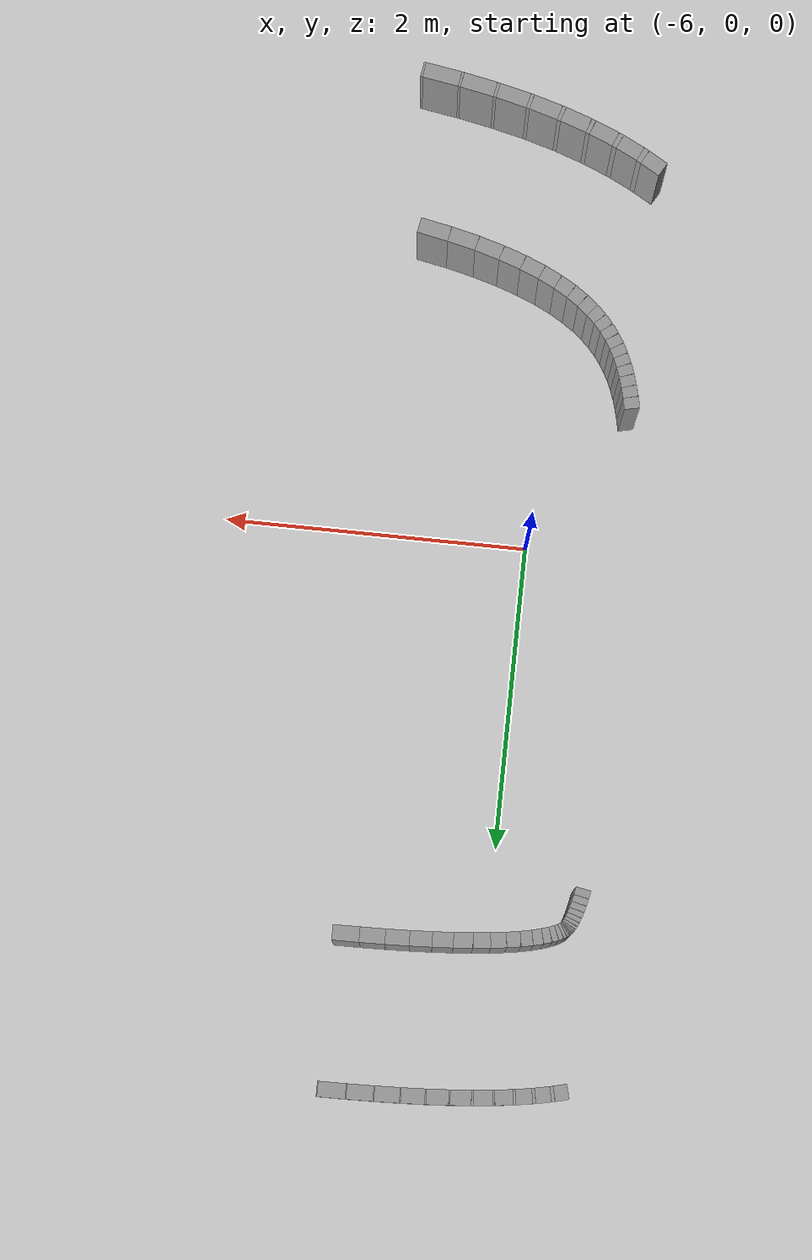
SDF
<sdf version="1.6">
 <world name="default">
  <include><uri>model://ground_plane</uri></include>
  <include><uri>model://sun</uri></include>
  <model name="wall_22_outward">
   <static>true</static>
   <link name="link">
    <collision name="collision">
     <geometry><box><size>0.1745138847776721 0.1 1.0</size></box></geometry>
    </collision>
    <visual name="visual">
     <geometry><box><size>0.1745138847776721 0.1 1.0</size></box></geometry>
     <material>
      <script><uri>file://media/materials/scripts/gazebo.material</uri><name>Gazebo/Gray</name></script>
     </material>
    </visual>
   </link>
   <pose>-5.089136544184888 2.688651385560158 0.5 0 0 -3.1303867783887305</pose>
  </model>
  <model name="wall_23_outward">
   <static>true</static>
   <link name="link">
    <collision name="collision">
     <geometry><box><size>0.16537689547402926 0.1 1.0</size></box></geometry>
    </collision>
    <visual name="visual">
     <geometry><box><size>0.16537689547402926 0.1 1.0</size></box></geometry>
     <material>
      <script><uri>file://media/materials/scripts/gazebo.material</uri><name>Gazebo/Gray</name></script>
     </material>
    </visual>
   </link>
   <pose>-5.259055711600917 2.685821537756546 0.5 0 0 -3.119192514208508</pose>
  </model>
  <model name="wall_24_outward">
   <static>true</static>
   <link name="link">
    <collision name="collision">
     <geometry><box><size>0.15579286756665978 0.1 1.0</size></box></geometry>
    </collision>
    <visual name="visual">
     <geometry><box><size>0.15579286756665978 0.1 1.0</size></box></geometry>
     <material>
      <script><uri>file://media/materials/scripts/gazebo.material</uri><name>Gazebo/Gray</name></script>
     </material>
    </visual>
   </link>
   <pose>-5.419572740003172 2.6812607695263315 0.5 0 0 -3.106812671907408</pose>
  </model>
  <model name="wall_25_outward">
   <static>true</static>
   <link name="link">
    <collision name="collision">
     <geometry><box><size>0.14576239276482258 0.1 1.0</size></box></geometry>
    </collision>
    <visual name="visual">
     <geometry><box><size>0.14576239276482258 0.1 1.0</size></box></geometry>
     <material>
      <script><uri>file://media/materials/scripts/gazebo.material</uri><name>Gazebo/Gray</name></script>
     </material>
    </visual>
   </link>
   <pose>-5.570216822638956 2.6750035530914955 0.5 0 0 -3.0928842104872367</pose>
  </model>
  <model name="wall_26_outward">
   <static>true</static>
   <link name="link">
    <collision name="collision">
     <geometry><box><size>0.13529707555168738 0.1 1.0</size></box></geometry>
    </collision>
    <visual name="visual">
     <geometry><box><size>0.13529707555168738 0.1 1.0</size></box></geometry>
     <material>
      <script><uri>file://media/materials/scripts/gazebo.material</uri><name>Gazebo/Gray</name></script>
     </material>
    </visual>
   </link>
   <pose>-5.71051875122332 2.6670839238849906 0.5 0 0 -3.0769327121487433</pose>
  </model>
  <model name="wall_27_outward">
   <static>true</static>
   <link name="link">
    <collision name="collision">
     <geometry><box><size>0.12440593182755699 0.1 1.0</size></box></geometry>
    </collision>
    <visual name="visual">
     <geometry><box><size>0.12440593182755699 0.1 1.0</size></box></geometry>
     <material>
      <script><uri>file://media/materials/scripts/gazebo.material</uri><name>Gazebo/Gray</name></script>
     </material>
    </visual>
   </link>
   <pose>-5.840013486167057 2.657540696402026 0.5 0 0 -3.0583473821088925</pose>
  </model>
  <model name="wall_28_outward">
   <static>true</static>
   <link name="link">
    <collision name="collision">
     <geometry><box><size>0.11310574560206636 0.1 1.0</size></box></geometry>
    </collision>
    <visual name="visual">
     <geometry><box><size>0.11310574560206636 0.1 1.0</size></box></geometry>
     <material>
      <script><uri>file://media/materials/scripts/gazebo.material</uri><name>Gazebo/Gray</name></script>
     </material>
    </visual>
   </link>
   <pose>-5.958241194113793 2.6464294106881496 0.5 0 0 -3.0363790206103327</pose>
  </model>
  <model name="wall_29_outward">
   <static>true</static>
   <link name="link">
    <collision name="collision">
     <geometry><box><size>0.1014162737693384 0.1 1.0</size></box></geometry>
    </collision>
    <visual name="visual">
     <geometry><box><size>0.1014162737693384 0.1 1.0</size></box></geometry>
     <material>
      <script><uri>file://media/materials/scripts/gazebo.material</uri><name>Gazebo/Gray</name></script>
     </material>
    </visual>
   </link>
   <pose>-6.064751796304438 2.6338422294535917 0.5 0 0 -3.010110535834303</pose>
  </model>
  <model name="wall_30_outward">
   <static>true</static>
   <link name="link">
    <collision name="collision">
     <geometry><box><size>0.0893771961264983 0.1 1.0</size></box></geometry>
    </collision>
    <visual name="visual">
     <geometry><box><size>0.0893771961264983 0.1 1.0</size></box></geometry>
     <material>
      <script><uri>file://media/materials/scripts/gazebo.material</uri><name>Gazebo/Gray</name></script>
     </material>
    </visual>
   </link>
   <pose>-6.159117503773086 2.619936124576597 0.5 0 0 -2.9784553037772485</pose>
  </model>
  <model name="wall_31_outward">
   <static>true</static>
   <link name="link">
    <collision name="collision">
     <geometry><box><size>0.07706047219806364 0.1 1.0</size></box></geometry>
    </collision>
    <visual name="visual">
     <geometry><box><size>0.07706047219806364 0.1 1.0</size></box></geometry>
     <material>
      <script><uri>file://media/materials/scripts/gazebo.material</uri><name>Gazebo/Gray</name></script>
     </material>
    </visual>
   </link>
   <pose>-6.240964236394742 2.6049706022092662 0.5 0 0 -2.9401979096768147</pose>
  </model>
  <model name="wall_32_outward">
   <static>true</static>
   <link name="link">
    <collision name="collision">
     <geometry><box><size>0.06459485305786183 0.1 1.0</size></box></geometry>
    </collision>
    <visual name="visual">
     <geometry><box><size>0.06459485305786183 0.1 1.0</size></box></geometry>
     <material>
      <script><uri>file://media/materials/scripts/gazebo.material</uri><name>Gazebo/Gray</name></script>
     </material>
    </visual>
   </link>
   <pose>-6.310028393585592 2.5893486071235454 0.5 0 0 -2.8940190460786783</pose>
  </model>
  <model name="wall_33_outward">
   <static>true</static>
   <link name="link">
    <collision name="collision">
     <geometry><box><size>0.05219800385316098 0.1 1.0</size></box></geometry>
    </collision>
    <visual name="visual">
     <geometry><box><size>0.05219800385316098 0.1 1.0</size></box></geometry>
     <material>
      <script><uri>file://media/materials/scripts/gazebo.material</uri><name>Gazebo/Gray</name></script>
     </material>
    </visual>
   </link>
   <pose>-6.366251846193697 2.57364874288543 0.5 0 0 -2.8386826201260953</pose>
  </model>
  <model name="wall_34_outward">
   <static>true</static>
   <link name="link">
    <collision name="collision">
     <geometry><box><size>0.04021269407964118 0.1 1.0</size></box></geometry>
    </collision>
    <visual name="visual">
     <geometry><box><size>0.04021269407964118 0.1 1.0</size></box></geometry>
     <material>
      <script><uri>file://media/materials/scripts/gazebo.material</uri><name>Gazebo/Gray</name></script>
     </material>
    </visual>
   </link>
   <pose>-6.4099196178435935 2.558621861044299 0.5 0 0 -2.7731493434163204</pose>
  </model>
  <model name="wall_35_outward">
   <static>true</static>
   <link name="link">
    <collision name="collision">
     <geometry><box><size>0.02916570258736988 0.1 1.0</size></box></geometry>
    </collision>
    <visual name="visual">
     <geometry><box><size>0.02916570258736988 0.1 1.0</size></box></geometry>
     <material>
      <script><uri>file://media/materials/scripts/gazebo.material</uri><name>Gazebo/Gray</name></script>
     </material>
    </visual>
   </link>
   <pose>-6.441842121010467 2.5451090108809797 0.5 0 0 -2.6970505991704186</pose>
  </model>
  <model name="wall_36_outward">
   <static>true</static>
   <link name="link">
    <collision name="collision">
     <geometry><box><size>0.01970447937732626 0.1 1.0</size></box></geometry>
    </collision>
    <visual name="visual">
     <geometry><box><size>0.01970447937732626 0.1 1.0</size></box></geometry>
     <material>
      <script><uri>file://media/materials/scripts/gazebo.material</uri><name>Gazebo/Gray</name></script>
     </material>
    </visual>
   </link>
   <pose>-6.4635048994722215 2.5338514486330386 0.5 0 0 -2.6109276550862126</pose>
  </model>
  <model name="wall_37_outward">
   <static>true</static>
   <link name="link">
    <collision name="collision">
     <geometry><box><size>0.012542738685571155 0.1 1.0</size></box></geometry>
    </collision>
    <visual name="visual">
     <geometry><box><size>0.012542738685571155 0.1 1.0</size></box></geometry>
     <material>
      <script><uri>file://media/materials/scripts/gazebo.material</uri><name>Gazebo/Gray</name></script>
     </material>
    </visual>
   </link>
   <pose>-6.477088068018396 2.525195871121216 0.5 0 0 -2.516606615605364</pose>
  </model>
  <model name="wall_38_outward">
   <static>true</static>
   <link name="link">
    <collision name="collision">
     <geometry><box><size>0.008268420198442037 0.1 1.0</size></box></geometry>
    </collision>
    <visual name="visual">
     <geometry><box><size>0.008268420198442037 0.1 1.0</size></box></geometry>
     <material>
      <script><uri>file://media/materials/scripts/gazebo.material</uri><name>Gazebo/Gray</name></script>
     </material>
    </visual>
   </link>
   <pose>-6.485270146383673 2.518786986967492 0.5 0 0 -2.417221727164259</pose>
  </model>
  <model name="wall_39_outward">
   <static>true</static>
   <link name="link">
    <collision name="collision">
     <geometry><box><size>0.007109251496982159 0.1 1.0</size></box></geometry>
    </collision>
    <visual name="visual">
     <geometry><box><size>0.007109251496982159 0.1 1.0</size></box></geometry>
     <material>
      <script><uri>file://media/materials/scripts/gazebo.material</uri><name>Gazebo/Gray</name></script>
     </material>
    </visual>
   </link>
   <pose>-6.490779170693379 2.513437117754802 0.5 0 0 -2.3169107187363056</pose>
  </model>
  <model name="wall_40_outward">
   <static>true</static>
   <link name="link">
    <collision name="collision">
     <geometry><box><size>0.0088053573459172 0.1 1.0</size></box></geometry>
    </collision>
    <visual name="visual">
     <geometry><box><size>0.0088053573459172 0.1 1.0</size></box></geometry>
     <material>
      <script><uri>file://media/materials/scripts/gazebo.material</uri><name>Gazebo/Gray</name></script>
     </material>
    </visual>
   </link>
   <pose>-6.4958532651454215 2.5073195162132977 0.5 0 0 -2.2198855603320045</pose>
  </model>
  <model name="wall_41_outward">
   <static>true</static>
   <link name="link">
    <collision name="collision">
     <geometry><box><size>0.012729278913564302 0.1 1.0</size></box></geometry>
    </collision>
    <visual name="visual">
     <geometry><box><size>0.012729278913564302 0.1 1.0</size></box></geometry>
     <material>
      <script><uri>file://media/materials/scripts/gazebo.material</uri><name>Gazebo/Gray</name></script>
     </material>
    </visual>
   </link>
   <pose>-6.501889186138682 2.498415874615053 0.5 0 0 -2.1296589106911497</pose>
  </model>
  <model name="wall_42_outward">
   <static>true</static>
   <link name="link">
    <collision name="collision">
     <geometry><box><size>0.018078094400813375 0.1 1.0</size></box></geometry>
    </collision>
    <visual name="visual">
     <geometry><box><size>0.018078094400813375 0.1 1.0</size></box></geometry>
     <material>
      <script><uri>file://media/materials/scripts/gazebo.material</uri><name>Gazebo/Gray</name></script>
     </material>
    </visual>
   </link>
   <pose>-6.509419431233865 2.484992380916353 0.5 0 0 -2.048493816246914</pose>
  </model>
  <model name="wall_43_outward">
   <static>true</static>
   <link name="link">
    <collision name="collision">
     <geometry><box><size>0.024121877454705724 0.1 1.0</size></box></geometry>
    </collision>
    <visual name="visual">
     <geometry><box><size>0.024121877454705724 0.1 1.0</size></box></geometry>
     <material>
      <script><uri>file://media/materials/scripts/gazebo.material</uri><name>Gazebo/Gray</name></script>
     </material>
    </visual>
   </link>
   <pose>-6.518344016150102 2.4658871719110413 0.5 0 0 -1.977310241986031</pose>
  </model>
  <model name="wall_44_outward">
   <static>true</static>
   <link name="link">
    <collision name="collision">
     <geometry><box><size>0.030317028157117235 0.1 1.0</size></box></geometry>
    </collision>
    <visual name="visual">
     <geometry><box><size>0.030317028157117235 0.1 1.0</size></box></geometry>
     <material>
      <script><uri>file://media/materials/scripts/gazebo.material</uri><name>Gazebo/Gray</name></script>
     </material>
    </visual>
   </link>
   <pose>-6.528243036378707 2.44054507561391 0.5 0 0 -1.916038067245079</pose>
  </model>
  <model name="wall_45_outward">
   <static>true</static>
   <link name="link">
    <collision name="collision">
     <geometry><box><size>0.03633877895909691 0.1 1.0</size></box></geometry>
    </collision>
    <visual name="visual">
     <geometry><box><size>0.03633877895909691 0.1 1.0</size></box></geometry>
     <material>
      <script><uri>file://media/materials/scripts/gazebo.material</uri><name>Gazebo/Gray</name></script>
     </material>
    </visual>
   </link>
   <pose>-6.538622990509031 2.408886620681297 0.5 0 0 -1.8639205412335749</pose>
  </model>
  <model name="wall_46_outward">
   <static>true</static>
   <link name="link">
    <collision name="collision">
     <geometry><box><size>0.042021028365479135 0.1 1.0</size></box></geometry>
    </collision>
    <visual name="visual">
     <geometry><box><size>0.042021028365479135 0.1 1.0</size></box></geometry>
     <material>
      <script><uri>file://media/materials/scripts/gazebo.material</uri><name>Gazebo/Gray</name></script>
     </material>
    </visual>
   </link>
   <pose>-6.549054362132731 2.3711306367562526 0.5 0 0 -1.8199780611749543</pose>
  </model>
  <model name="wall_47_outward">
   <static>true</static>
   <link name="link">
    <collision name="collision">
     <geometry><box><size>0.04727209908733998 0.1 1.0</size></box></geometry>
    </collision>
    <visual name="visual">
     <geometry><box><size>0.04727209908733998 0.1 1.0</size></box></geometry>
     <material>
      <script><uri>file://media/materials/scripts/gazebo.material</uri><name>Gazebo/Gray</name></script>
     </material>
    </visual>
   </link>
   <pose>-6.559215694631106 2.3276635586757406 0.5 0 0 -1.783078301091299</pose>
  </model>
  <model name="wall_48_outward">
   <static>true</static>
   <link name="link">
    <collision name="collision">
     <geometry><box><size>0.052111580436070885 0.1 1.0</size></box></geometry>
    </collision>
    <visual name="visual">
     <geometry><box><size>0.052111580436070885 0.1 1.0</size></box></geometry>
     <material>
      <script><uri>file://media/materials/scripts/gazebo.material</uri><name>Gazebo/Gray</name></script>
     </material>
    </visual>
   </link>
   <pose>-6.568893499312052 2.2789293031315054 0.5 0 0 -1.7520892562855555</pose>
  </model>
  <model name="wall_86_outward">
   <static>true</static>
   <link name="link">
    <collision name="collision">
     <geometry><box><size>0.07518534213825824 0.1 1.0</size></box></geometry>
    </collision>
    <visual name="visual">
     <geometry><box><size>0.07518534213825824 0.1 1.0</size></box></geometry>
     <material>
      <script><uri>file://media/materials/scripts/gazebo.material</uri><name>Gazebo/Gray</name></script>
     </material>
    </visual>
   </link>
   <pose>-6.575822420470814 -0.9015789267510637 0.5 0 0 -1.3607689364903768</pose>
  </model>
  <model name="wall_87_outward">
   <static>true</static>
   <link name="link">
    <collision name="collision">
     <geometry><box><size>0.07320153283139844 0.1 1.0</size></box></geometry>
    </collision>
    <visual name="visual">
     <geometry><box><size>0.07320153283139844 0.1 1.0</size></box></geometry>
     <material>
      <script><uri>file://media/materials/scripts/gazebo.material</uri><name>Gazebo/Gray</name></script>
     </material>
    </visual>
   </link>
   <pose>-6.5588357145371265 -0.9737843192031871 0.5 0 0 -1.3181459025360924</pose>
  </model>
  <model name="wall_88_outward">
   <static>true</static>
   <link name="link">
    <collision name="collision">
     <geometry><box><size>0.07114072034224858 0.1 1.0</size></box></geometry>
    </collision>
    <visual name="visual">
     <geometry><box><size>0.07114072034224858 0.1 1.0</size></box></geometry>
     <material>
      <script><uri>file://media/materials/scripts/gazebo.material</uri><name>Gazebo/Gray</name></script>
     </material>
    </visual>
   </link>
   <pose>-6.539121154249054 -1.0431881476569411 0.5 0 0 -1.2692166866374879</pose>
  </model>
  <model name="wall_89_outward">
   <static>true</static>
   <link name="link">
    <collision name="collision">
     <geometry><box><size>0.06919142123643665 0.1 1.0</size></box></geometry>
    </collision>
    <visual name="visual">
     <geometry><box><size>0.06919142123643665 0.1 1.0</size></box></geometry>
     <material>
      <script><uri>file://media/materials/scripts/gazebo.material</uri><name>Gazebo/Gray</name></script>
     </material>
    </visual>
   </link>
   <pose>-6.516460964256153 -1.1095658133714832 0.5 0 0 -1.213648997851773</pose>
  </model>
  <model name="wall_90_outward">
   <static>true</static>
   <link name="link">
    <collision name="collision">
     <geometry><box><size>0.06761527598463407 0.1 1.0</size></box></geometry>
    </collision>
    <visual name="visual">
     <geometry><box><size>0.06761527598463407 0.1 1.0</size></box></geometry>
     <material>
      <script><uri>file://media/materials/scripts/gazebo.material</uri><name>Gazebo/Gray</name></script>
     </material>
    </visual>
   </link>
   <pose>-6.490598193803983 -1.1728556132185068 0.5 0 0 -1.151360292855766</pose>
  </model>
  <model name="wall_91_outward">
   <static>true</static>
   <link name="link">
    <collision name="collision">
     <geometry><box><size>0.06673826582033647 0.1 1.0</size></box></geometry>
    </collision>
    <visual name="visual">
     <geometry><box><size>0.06673826582033647 0.1 1.0</size></box></geometry>
     <material>
      <script><uri>file://media/materials/scripts/gazebo.material</uri><name>Gazebo/Gray</name></script>
     </material>
    </visual>
   </link>
   <pose>-6.4611790343304625 -1.2332037732575896 0.5 0 0 -1.0826031948928696</pose>
  </model>
  <model name="wall_92_outward">
   <static>true</static>
   <link name="link">
    <collision name="collision">
     <geometry><box><size>0.06693331207335154 0.1 1.0</size></box></geometry>
    </collision>
    <visual name="visual">
     <geometry><box><size>0.06693331207335154 0.1 1.0</size></box></geometry>
     <material>
      <script><uri>file://media/materials/scripts/gazebo.material</uri><name>Gazebo/Gray</name></script>
     </material>
    </visual>
   </link>
   <pose>-6.427672778025029 -1.2909804781485636 0.5 0 0 -1.0080403564376326</pose>
  </model>
  <model name="wall_93_outward">
   <static>true</static>
   <link name="link">
    <collision name="collision">
     <geometry><box><size>0.06858158933500379 0.1 1.0</size></box></geometry>
    </collision>
    <visual name="visual">
     <geometry><box><size>0.06858158933500379 0.1 1.0</size></box></geometry>
     <material>
      <script><uri>file://media/materials/scripts/gazebo.material</uri><name>Gazebo/Gray</name></script>
     </material>
    </visual>
   </link>
   <pose>-6.389283598581196 -1.3467490626238656 0.5 0 0 -0.928767122730248</pose>
  </model>
  <model name="wall_94_outward">
   <static>true</static>
   <link name="link">
    <collision name="collision">
     <geometry><box><size>0.07203968442664313 0.1 1.0</size></box></geometry>
    </collision>
    <visual name="visual">
     <geometry><box><size>0.07203968442664313 0.1 1.0</size></box></geometry>
     <material>
      <script><uri>file://media/materials/scripts/gazebo.material</uri><name>Gazebo/Gray</name></script>
     </material>
    </visual>
   </link>
   <pose>-6.344876790815532 -1.4011845629545454 0.5 0 0 -0.8462896217126984</pose>
  </model>
  <model name="wall_95_outward">
   <static>true</static>
   <link name="link">
    <collision name="collision">
     <geometry><box><size>0.07757597076624428 0.1 1.0</size></box></geometry>
    </collision>
    <visual name="visual">
     <geometry><box><size>0.07757597076624428 0.1 1.0</size></box></geometry>
     <material>
      <script><uri>file://media/materials/scripts/gazebo.material</uri><name>Gazebo/Gray</name></script>
     </material>
    </visual>
   </link>
   <pose>-6.292954586463381 -1.4549477480855428 0.5 0 0 -0.7624463716337303</pose>
  </model>
  <model name="wall_96_outward">
   <static>true</static>
   <link name="link">
    <collision name="collision">
     <geometry><box><size>0.08532649711289683 0.1 1.0</size></box></geometry>
    </collision>
    <visual name="visual">
     <geometry><box><size>0.08532649711289683 0.1 1.0</size></box></geometry>
     <material>
      <script><uri>file://media/materials/scripts/gazebo.material</uri><name>Gazebo/Gray</name></script>
     </material>
    </visual>
   </link>
   <pose>-6.231709650742372 -1.5085378379438021 0.5 0 0 -0.6791912611696956</pose>
  </model>
  <model name="wall_97_outward">
   <static>true</static>
   <link name="link">
    <collision name="collision">
     <geometry><box><size>0.0952984141335097 0.1 1.0</size></box></geometry>
    </collision>
    <visual name="visual">
     <geometry><box><size>0.0952984141335097 0.1 1.0</size></box></geometry>
     <material>
      <script><uri>file://media/materials/scripts/gazebo.material</uri><name>Gazebo/Gray</name></script>
     </material>
    </visual>
   </link>
   <pose>-6.15914495853417 -1.5621796839339233 0.5 0 0 -0.5984132444574249</pose>
  </model>
  <model name="wall_98_outward">
   <static>true</static>
   <link name="link">
    <collision name="collision">
     <geometry><box><size>0.10736680912191676 0.1 1.0</size></box></geometry>
    </collision>
    <visual name="visual">
     <geometry><box><size>0.10736680912191676 0.1 1.0</size></box></geometry>
     <material>
      <script><uri>file://media/materials/scripts/gazebo.material</uri><name>Gazebo/Gray</name></script>
     </material>
    </visual>
   </link>
   <pose>-6.073235434523615 -1.615778488534839 0.5 0 0 -0.5217665300394687</pose>
  </model>
  <model name="wall_99_outward">
   <static>true</static>
   <link name="link">
    <collision name="collision">
     <geometry><box><size>0.12129840647334751 0.1 1.0</size></box></geometry>
    </collision>
    <visual name="visual">
     <geometry><box><size>0.12129840647334751 0.1 1.0</size></box></geometry>
     <material>
      <script><uri>file://media/materials/scripts/gazebo.material</uri><name>Gazebo/Gray</name></script>
     </material>
    </visual>
   </link>
   <pose>-5.972097645047224 -1.6689440407074936 0.5 0 0 -0.45052679043272414</pose>
  </model>
  <model name="wall_100_outward">
   <static>true</static>
   <link name="link">
    <collision name="collision">
     <geometry><box><size>0.1367852743493145 0.1 1.0</size></box></geometry>
    </collision>
    <visual name="visual">
     <geometry><box><size>0.1367852743493145 0.1 1.0</size></box></geometry>
     <material>
      <script><uri>file://media/materials/scripts/gazebo.material</uri><name>Gazebo/Gray</name></script>
     </material>
    </visual>
   </link>
   <pose>-5.854128028085939 -1.7210732852494899 0.5 0 0 -0.38554728693386464</pose>
  </model>
  <model name="wall_101_outward">
   <static>true</static>
   <link name="link">
    <collision name="collision">
     <geometry><box><size>0.15348123411152953 0.1 1.0</size></box></geometry>
    </collision>
    <visual name="visual">
     <geometry><box><size>0.15348123411152953 0.1 1.0</size></box></geometry>
     <material>
      <script><uri>file://media/materials/scripts/gazebo.material</uri><name>Gazebo/Gray</name></script>
     </material>
    </visual>
   </link>
   <pose>-5.71808826188563 -1.7714619702120444 0.5 0 0 -0.3272637623252619</pose>
  </model>
  <model name="wall_102_outward">
   <static>true</static>
   <link name="link">
    <collision name="collision">
     <geometry><box><size>0.17101043017087691 0.1 1.0</size></box></geometry>
    </collision>
    <visual name="visual">
     <geometry><box><size>0.17101043017087691 0.1 1.0</size></box></geometry>
     <material>
      <script><uri>file://media/materials/scripts/gazebo.material</uri><name>Gazebo/Gray</name></script>
     </material>
    </visual>
   </link>
   <pose>-5.563146124544544 -1.8194124467511958 0.5 0 0 -0.2757690331140755</pose>
  </model>
  <model name="wall_103_outward">
   <static>true</static>
   <link name="link">
    <collision name="collision">
     <geometry><box><size>0.18899383843622286 0.1 1.0</size></box></geometry>
    </collision>
    <visual name="visual">
     <geometry><box><size>0.18899383843622286 0.1 1.0</size></box></geometry>
     <material>
      <script><uri>file://media/materials/scripts/gazebo.material</uri><name>Gazebo/Gray</name></script>
     </material>
    </visual>
   </link>
   <pose>-5.388882087559892 -1.864318270838763 0.5 0 0 -0.23087710204363832</pose>
  </model>
  <model name="wall_104_outward">
   <static>true</static>
   <link name="link">
    <collision name="collision">
     <geometry><box><size>0.2070390200465224 0.1 1.0</size></box></geometry>
    </collision>
    <visual name="visual">
     <geometry><box><size>0.2070390200465224 0.1 1.0</size></box></geometry>
     <material>
      <script><uri>file://media/materials/scripts/gazebo.material</uri><name>Gazebo/Gray</name></script>
     </material>
    </visual>
   </link>
   <pose>-5.195279566981792 -1.9057181803288965 0.5 0 0 -0.1922183642382167</pose>
  </model>
  <model name="wall_36_inward">
   <static>true</static>
   <link name="link">
    <collision name="collision">
     <geometry><box><size>0.0051331795283478645 0.1 1.0</size></box></geometry>
    </collision>
    <visual name="visual">
     <geometry><box><size>0.0051331795283478645 0.1 1.0</size></box></geometry>
     <material>
      <script><uri>file://media/materials/scripts/gazebo.material</uri><name>Gazebo/Gray</name></script>
     </material>
    </visual>
   </link>
   <pose>-5.007957716043551 3.689610716967314 0.5 0 0 -3.135519980460133</pose>
  </model>
  <model name="wall_37_inward">
   <static>true</static>
   <link name="link">
    <collision name="collision">
     <geometry><box><size>0.17987910362654705 0.1 1.0</size></box></geometry>
    </collision>
    <visual name="visual">
     <geometry><box><size>0.17987910362654705 0.1 1.0</size></box></geometry>
     <material>
      <script><uri>file://media/materials/scripts/gazebo.material</uri><name>Gazebo/Gray</name></script>
     </material>
    </visual>
   </link>
   <pose>-5.100458163427241 3.6885873007019474 0.5 0 0 -3.130386778388732</pose>
  </model>
  <model name="wall_38_inward">
   <static>true</static>
   <link name="link">
    <collision name="collision">
     <geometry><box><size>0.005597102865769934 0.1 1.0</size></box></geometry>
    </collision>
    <visual name="visual">
     <geometry><box><size>0.005597102865769934 0.1 1.0</size></box></geometry>
     <material>
      <script><uri>file://media/materials/scripts/gazebo.material</uri><name>Gazebo/Gray</name></script>
     </material>
    </visual>
   </link>
   <pose>-5.193190224740339 3.687532448534123 0.5 0 0 -3.1247896462986016</pose>
  </model>
  <model name="wall_39_inward">
   <static>true</static>
   <link name="link">
    <collision name="collision">
     <geometry><box><size>0.17127049084767218 0.1 1.0</size></box></geometry>
    </collision>
    <visual name="visual">
     <geometry><box><size>0.17127049084767218 0.1 1.0</size></box></geometry>
     <material>
      <script><uri>file://media/materials/scripts/gazebo.material</uri><name>Gazebo/Gray</name></script>
     </material>
    </visual>
   </link>
   <pose>-5.281602142993968 3.6855673456474296 0.5 0 0 -3.119192514208508</pose>
  </model>
  <model name="wall_40_inward">
   <static>true</static>
   <link name="link">
    <collision name="collision">
     <geometry><box><size>0.0061898816226934866 0.1 1.0</size></box></geometry>
    </collision>
    <visual name="visual">
     <geometry><box><size>0.0061898816226934866 0.1 1.0</size></box></geometry>
     <material>
      <script><uri>file://media/materials/scripts/gazebo.material</uri><name>Gazebo/Gray</name></script>
     </material>
    </visual>
   </link>
   <pose>-5.3703095808866514 3.6835607921368823 0.5 0 0 -3.113002593057978</pose>
  </model>
  <model name="wall_41_inward">
   <static>true</static>
   <link name="link">
    <collision name="collision">
     <geometry><box><size>0.16237003932138386 0.1 1.0</size></box></geometry>
    </collision>
    <visual name="visual">
     <geometry><box><size>0.16237003932138386 0.1 1.0</size></box></geometry>
     <material>
      <script><uri>file://media/materials/scripts/gazebo.material</uri><name>Gazebo/Gray</name></script>
     </material>
    </visual>
   </link>
   <pose>-5.454539178892286 3.680649275377217 0.5 0 0 -3.1068126719074085</pose>
  </model>
  <model name="wall_42_inward">
   <static>true</static>
   <link name="link">
    <collision name="collision">
     <geometry><box><size>0.006964174415432868 0.1 1.0</size></box></geometry>
    </collision>
    <visual name="visual">
     <geometry><box><size>0.006964174415432868 0.1 1.0</size></box></geometry>
     <material>
      <script><uri>file://media/materials/scripts/gazebo.material</uri><name>Gazebo/Gray</name></script>
     </material>
    </visual>
   </link>
   <pose>-5.539154154631438 3.6776809163331294 0.5 0 0 -3.099848441197315</pose>
  </model>
  <model name="wall_43_inward">
   <static>true</static>
   <link name="link">
    <collision name="collision">
     <geometry><box><size>0.1532325235621706 0.1 1.0</size></box></geometry>
    </collision>
    <visual name="visual">
     <geometry><box><size>0.1532325235621706 0.1 1.0</size></box></geometry>
     <material>
      <script><uri>file://media/materials/scripts/gazebo.material</uri><name>Gazebo/Gray</name></script>
     </material>
    </visual>
   </link>
   <pose>-5.619158601605301 3.6738052182016703 0.5 0 0 -3.092884210487236</pose>
  </model>
  <model name="wall_44_inward">
   <static>true</static>
   <link name="link">
    <collision name="collision">
     <geometry><box><size>0.007975664609857968 0.1 1.0</size></box></geometry>
    </collision>
    <visual name="visual">
     <geometry><box><size>0.007975664609857968 0.1 1.0</size></box></geometry>
     <material>
      <script><uri>file://media/materials/scripts/gazebo.material</uri><name>Gazebo/Gray</name></script>
     </material>
    </visual>
   </link>
   <pose>-5.69966542221026 3.6698489088251547 0.5 0 0 -3.084908461317966</pose>
  </model>
  <model name="wall_45_inward">
   <static>true</static>
   <link name="link">
    <collision name="collision">
     <geometry><box><size>0.14393150095525645 0.1 1.0</size></box></geometry>
    </collision>
    <visual name="visual">
     <geometry><box><size>0.14393150095525645 0.1 1.0</size></box></geometry>
     <material>
      <script><uri>file://media/materials/scripts/gazebo.material</uri><name>Gazebo/Gray</name></script>
     </material>
    </visual>
   </link>
   <pose>-5.775462211376555 3.6649729234191213 0.5 0 0 -3.076932712148744</pose>
  </model>
  <model name="wall_46_inward">
   <static>true</static>
   <link name="link">
    <collision name="collision">
     <geometry><box><size>0.009292531277954945 0.1 1.0</size></box></geometry>
    </collision>
    <visual name="visual">
     <geometry><box><size>0.009292531277954945 0.1 1.0</size></box></geometry>
     <material>
      <script><uri>file://media/materials/scripts/gazebo.material</uri><name>Gazebo/Gray</name></script>
     </material>
    </visual>
   </link>
   <pose>-5.851911139412763 3.6599795736876954 0.5 0 0 -3.067640047128807</pose>
  </model>
  <model name="wall_47_inward">
   <static>true</static>
   <link name="link">
    <collision name="collision">
     <geometry><box><size>0.1345447093476481 0.1 1.0</size></box></geometry>
    </collision>
    <visual name="visual">
     <geometry><box><size>0.1345447093476481 0.1 1.0</size></box></geometry>
     <material>
      <script><uri>file://media/materials/scripts/gazebo.material</uri><name>Gazebo/Gray</name></script>
     </material>
    </visual>
   </link>
   <pose>-5.923584103755713 3.6540426435849165 0.5 0 0 -3.0583473821088916</pose>
  </model>
  <model name="wall_48_inward">
   <static>true</static>
   <link name="link">
    <collision name="collision">
     <geometry><box><size>0.01098395987296773 0.1 1.0</size></box></geometry>
    </collision>
    <visual name="visual">
     <geometry><box><size>0.01098395987296773 0.1 1.0</size></box></geometry>
     <material>
      <script><uri>file://media/materials/scripts/gazebo.material</uri><name>Gazebo/Gray</name></script>
     </material>
    </visual>
   </link>
   <pose>-5.996091117662431 3.6479322630665907 0.5 0 0 -3.0473632013596297</pose>
  </model>
  <model name="wall_49_inward">
   <static>true</static>
   <link name="link">
    <collision name="collision">
     <geometry><box><size>0.12516555571275725 0.1 1.0</size></box></geometry>
    </collision>
    <visual name="visual">
     <geometry><box><size>0.12516555571275725 0.1 1.0</size></box></geometry>
     <material>
      <script><uri>file://media/materials/scripts/gazebo.material</uri><name>Gazebo/Gray</name></script>
     </material>
    </visual>
   </link>
   <pose>-6.0637954379379035 3.640843102577901 0.5 0 0 -3.0363790206103327</pose>
  </model>
  <model name="wall_50_inward">
   <static>true</static>
   <link name="link">
    <collision name="collision">
     <geometry><box><size>0.013133864763583808 0.1 1.0</size></box></geometry>
    </collision>
    <visual name="visual">
     <geometry><box><size>0.013133864763583808 0.1 1.0</size></box></geometry>
     <material>
      <script><uri>file://media/materials/scripts/gazebo.material</uri><name>Gazebo/Gray</name></script>
     </material>
    </visual>
   </link>
   <pose>-6.132553139492642 3.6334953133171215 0.5 0 0 -3.0232447782223186</pose>
  </model>
  <model name="wall_51_inward">
   <static>true</static>
   <link name="link">
    <collision name="collision">
     <geometry><box><size>0.11589824153598319 0.1 1.0</size></box></geometry>
    </collision>
    <visual name="visual">
     <geometry><box><size>0.11589824153598319 0.1 1.0</size></box></geometry>
     <material>
      <script><uri>file://media/materials/scripts/gazebo.material</uri><name>Gazebo/Gray</name></script>
     </material>
    </visual>
   </link>
   <pose>-6.196523079457633 3.6251226047855427 0.5 0 0 -3.0101105358343037</pose>
  </model>
  <model name="wall_52_inward">
   <static>true</static>
   <link name="link">
    <collision name="collision">
     <geometry><box><size>0.01582695519840932 0.1 1.0</size></box></geometry>
    </collision>
    <visual name="visual">
     <geometry><box><size>0.01582695519840932 0.1 1.0</size></box></geometry>
     <material>
      <script><uri>file://media/materials/scripts/gazebo.material</uri><name>Gazebo/Gray</name></script>
     </material>
    </visual>
   </link>
   <pose>-6.26179979323593 3.616363745032811 0.5 0 0 -2.9942829198057885</pose>
  </model>
  <model name="wall_53_inward">
   <static>true</static>
   <link name="link">
    <collision name="collision">
     <geometry><box><size>0.1068571802954396 0.1 1.0</size></box></geometry>
    </collision>
    <visual name="visual">
     <geometry><box><size>0.1068571802954396 0.1 1.0</size></box></geometry>
     <material>
      <script><uri>file://media/materials/scripts/gazebo.material</uri><name>Gazebo/Gray</name></script>
     </material>
    </visual>
   </link>
   <pose>-6.3223467609126045 3.606524636116326 0.5 0 0 -2.9784553037772503</pose>
  </model>
  <model name="wall_54_inward">
   <static>true</static>
   <link name="link">
    <collision name="collision">
     <geometry><box><size>0.019127530517375632 0.1 1.0</size></box></geometry>
    </collision>
    <visual name="visual">
     <geometry><box><size>0.019127530517375632 0.1 1.0</size></box></geometry>
     <material>
      <script><uri>file://media/materials/scripts/gazebo.material</uri><name>Gazebo/Gray</name></script>
     </material>
    </visual>
   </link>
   <pose>-6.384471303746235 3.596113533752654 0.5 0 0 -2.9593266067270294</pose>
  </model>
  <model name="wall_55_inward">
   <static>true</static>
   <link name="link">
    <collision name="collision">
     <geometry><box><size>0.09817275536538758 0.1 1.0</size></box></geometry>
    </collision>
    <visual name="visual">
     <geometry><box><size>0.09817275536538758 0.1 1.0</size></box></geometry>
     <material>
      <script><uri>file://media/materials/scripts/gazebo.material</uri><name>Gazebo/Gray</name></script>
     </material>
    </visual>
   </link>
   <pose>-6.441970919724618 3.584560973026199 0.5 0 0 -2.9401979096768085</pose>
  </model>
  <model name="wall_56_inward">
   <static>true</static>
   <link name="link">
    <collision name="collision">
     <geometry><box><size>0.023087380273607426 0.1 1.0</size></box></geometry>
    </collision>
    <visual name="visual">
     <geometry><box><size>0.023087380273607426 0.1 1.0</size></box></geometry>
     <material>
      <script><uri>file://media/materials/scripts/gazebo.material</uri><name>Gazebo/Gray</name></script>
     </material>
    </visual>
   </link>
   <pose>-6.501319237759367 3.5721722605590402 0.5 0 0 -2.9171084778777434</pose>
  </model>
  <model name="wall_57_inward">
   <static>true</static>
   <link name="link">
    <collision name="collision">
     <geometry><box><size>0.08997925868580818 0.1 1.0</size></box></geometry>
    </collision>
    <visual name="visual">
     <geometry><box><size>0.08997925868580818 0.1 1.0</size></box></geometry>
     <material>
      <script><uri>file://media/materials/scripts/gazebo.material</uri><name>Gazebo/Gray</name></script>
     </material>
    </visual>
   </link>
   <pose>-6.556191175479819 3.558577783753715 0.5 0 0 -2.894019046078686</pose>
  </model>
  <model name="wall_189_inward">
   <static>true</static>
   <link name="link">
    <collision name="collision">
     <geometry><box><size>0.14435534502395778 0.1 1.0</size></box></geometry>
    </collision>
    <visual name="visual">
     <geometry><box><size>0.14435534502395778 0.1 1.0</size></box></geometry>
     <material>
      <script><uri>file://media/materials/scripts/gazebo.material</uri><name>Gazebo/Gray</name></script>
     </material>
    </visual>
   </link>
   <pose>-6.57223456733388 -2.4823812369200056 0.5 0 0 -0.5217665300394657</pose>
  </model>
  <model name="wall_190_inward">
   <static>true</static>
   <link name="link">
    <collision name="collision">
     <geometry><box><size>0.035612338013735284 0.1 1.0</size></box></geometry>
    </collision>
    <visual name="visual">
     <geometry><box><size>0.035612338013735284 0.1 1.0</size></box></geometry>
     <material>
      <script><uri>file://media/materials/scripts/gazebo.material</uri><name>Gazebo/Gray</name></script>
     </material>
    </visual>
   </link>
   <pose>-6.493917708264414 -2.52667492555228 0.5 0 0 -0.4861466602361054</pose>
  </model>
  <model name="wall_191_inward">
   <static>true</static>
   <link name="link">
    <collision name="collision">
     <geometry><box><size>0.15536647169987966 0.1 1.0</size></box></geometry>
    </collision>
    <visual name="visual">
     <geometry><box><size>0.15536647169987966 0.1 1.0</size></box></geometry>
     <material>
      <script><uri>file://media/materials/scripts/gazebo.material</uri><name>Gazebo/Gray</name></script>
     </material>
    </visual>
   </link>
   <pose>-6.408242730910038 -2.5688207421802094 0.5 0 0 -0.45052679043272537</pose>
  </model>
  <model name="wall_192_inward">
   <static>true</static>
   <link name="link">
    <collision name="collision">
     <geometry><box><size>0.032484036107590604 0.1 1.0</size></box></geometry>
    </collision>
    <visual name="visual">
     <geometry><box><size>0.032484036107590604 0.1 1.0</size></box></geometry>
     <material>
      <script><uri>file://media/materials/scripts/gazebo.material</uri><name>Gazebo/Gray</name></script>
     </material>
    </visual>
   </link>
   <pose>-6.3234675171176935 -2.609240844850503 0.5 0 0 -0.41803703868329534</pose>
  </model>
  <model name="wall_193_inward">
   <static>true</static>
   <link name="link">
    <collision name="collision">
     <geometry><box><size>0.16761087587209847 0.1 1.0</size></box></geometry>
    </collision>
    <visual name="visual">
     <geometry><box><size>0.16761087587209847 0.1 1.0</size></box></geometry>
     <material>
      <script><uri>file://media/materials/scripts/gazebo.material</uri><name>Gazebo/Gray</name></script>
     </material>
    </visual>
   </link>
   <pose>-6.23097062659731 -2.647350974630541 0.5 0 0 -0.38554728693386414</pose>
  </model>
  <model name="wall_194_inward">
   <static>true</static>
   <link name="link">
    <collision name="collision">
     <geometry><box><size>0.02913763774318553 0.1 1.0</size></box></geometry>
    </collision>
    <visual name="visual">
     <geometry><box><size>0.02913763774318553 0.1 1.0</size></box></geometry>
     <material>
      <script><uri>file://media/materials/scripts/gazebo.material</uri><name>Gazebo/Gray</name></script>
     </material>
    </visual>
   </link>
   <pose>-6.139663844132649 -2.683950552122293 0.5 0 0 -0.35640552462956554</pose>
  </model>
  <model name="wall_195_inward">
   <static>true</static>
   <link name="link">
    <collision name="collision">
     <geometry><box><size>0.18093276922852716 0.1 1.0</size></box></geometry>
    </collision>
    <visual name="visual">
     <geometry><box><size>0.18093276922852716 0.1 1.0</size></box></geometry>
     <material>
      <script><uri>file://media/materials/scripts/gazebo.material</uri><name>Gazebo/Gray</name></script>
     </material>
    </visual>
   </link>
   <pose>-6.040345650477756 -2.718114439023015 0.5 0 0 -0.32726376232525867</pose>
  </model>
  <model name="wall_196_inward">
   <static>true</static>
   <link name="link">
    <collision name="collision">
     <geometry><box><size>0.025744519930281054 0.1 1.0</size></box></geometry>
    </collision>
    <visual name="visual">
     <geometry><box><size>0.025744519930281054 0.1 1.0</size></box></geometry>
     <material>
      <script><uri>file://media/materials/scripts/gazebo.material</uri><name>Gazebo/Gray</name></script>
     </material>
    </visual>
   </link>
   <pose>-5.942389170533959 -2.751017806030258 0.5 0 0 -0.30151639771966904</pose>
  </model>
  <model name="wall_197_inward">
   <static>true</static>
   <link name="link">
    <collision name="collision">
     <geometry><box><size>0.1951118259382039 0.1 1.0</size></box></geometry>
    </collision>
    <visual name="visual">
     <geometry><box><size>0.1951118259382039 0.1 1.0</size></box></geometry>
     <material>
      <script><uri>file://media/materials/scripts/gazebo.material</uri><name>Gazebo/Gray</name></script>
     </material>
    </visual>
   </link>
   <pose>-5.8362277448309205 -2.781403668466271 0.5 0 0 -0.2757690331140757</pose>
  </model>
  <model name="wall_198_inward">
   <static>true</static>
   <link name="link">
    <collision name="collision">
     <geometry><box><size>0.022444080789851426 0.1 1.0</size></box></geometry>
    </collision>
    <visual name="visual">
     <geometry><box><size>0.022444080789851426 0.1 1.0</size></box></geometry>
     <material>
      <script><uri>file://media/materials/scripts/gazebo.material</uri><name>Gazebo/Gray</name></script>
     </material>
    </visual>
   </link>
   <pose>-5.7314939880086975 -2.8107793688219207 0.5 0 0 -0.25332306757885337</pose>
  </model>
  <model name="wall_199_inward">
   <static>true</static>
   <link name="link">
    <collision name="collision">
     <geometry><box><size>0.20988459466216727 0.1 1.0</size></box></geometry>
    </collision>
    <visual name="visual">
     <geometry><box><size>0.20988459466216727 0.1 1.0</size></box></geometry>
     <material>
      <script><uri>file://media/materials/scripts/gazebo.material</uri><name>Gazebo/Gray</name></script>
     </material>
    </visual>
   </link>
   <pose>-5.618472334969834 -2.83760596001326 0.5 0 0 -0.23087710204363796</pose>
  </model>
  <model name="wall_200_inward">
   <static>true</static>
   <link name="link">
    <collision name="collision">
     <geometry><box><size>0.019328165270890714 0.1 1.0</size></box></geometry>
    </collision>
    <visual name="visual">
     <geometry><box><size>0.019328165270890714 0.1 1.0</size></box></geometry>
     <material>
      <script><uri>file://media/materials/scripts/gazebo.material</uri><name>Gazebo/Gray</name></script>
     </material>
    </visual>
   </link>
   <pose>-5.506865927921492 -2.863649257182442 0.5 0 0 -0.2115477331409279</pose>
  </model>
  <model name="wall_201_inward">
   <static>true</static>
   <link name="link">
    <collision name="collision">
     <geometry><box><size>0.22493932817126383 0.1 1.0</size></box></geometry>
    </collision>
    <visual name="visual">
     <geometry><box><size>0.22493932817126383 0.1 1.0</size></box></geometry>
     <material>
      <script><uri>file://media/materials/scripts/gazebo.material</uri><name>Gazebo/Gray</name></script>
     </material>
    </visual>
   </link>
   <pose>-5.387018990994967 -2.887164310055115 0.5 0 0 -0.1922183642382163</pose>
  </model>
  <model name="wall_202_inward">
   <static>true</static>
   <link name="link">
    <collision name="collision">
     <geometry><box><size>0.016466606771119278 0.1 1.0</size></box></geometry>
    </collision>
    <visual name="visual">
     <geometry><box><size>0.016466606771119278 0.1 1.0</size></box></geometry>
     <material>
      <script><uri>file://media/materials/scripts/gazebo.material</uri><name>Gazebo/Gray</name></script>
     </material>
    </visual>
   </link>
   <pose>-5.26851422281235 -2.9100897364210674 0.5 0 0 -0.17575101322524042</pose>
  </model>
  <model name="wall_203_inward">
   <static>true</static>
   <link name="link">
    <collision name="collision">
     <geometry><box><size>0.2399486876542269 0.1 1.0</size></box></geometry>
    </collision>
    <visual name="visual">
     <geometry><box><size>0.2399486876542269 0.1 1.0</size></box></geometry>
     <material>
      <script><uri>file://media/materials/scripts/gazebo.material</uri><name>Gazebo/Gray</name></script>
     </material>
    </visual>
   </link>
   <pose>-5.141952142026751 -2.930558557974151 0.5 0 0 -0.1592836622122708</pose>
  </model>
  <model name="wall_204_inward">
   <static>true</static>
   <link name="link">
    <collision name="collision">
     <geometry><box><size>0.013884261214408531 0.1 1.0</size></box></geometry>
    </collision>
    <visual name="visual">
     <geometry><box><size>0.013884261214408531 0.1 1.0</size></box></geometry>
     <material>
      <script><uri>file://media/materials/scripts/gazebo.material</uri><name>Gazebo/Gray</name></script>
     </material>
    </visual>
   </link>
   <pose>-5.016627656232448 -2.9505936317056642 0.5 0 0 -0.14539895487473156</pose>
  </model>
 </world>
</sdf>
